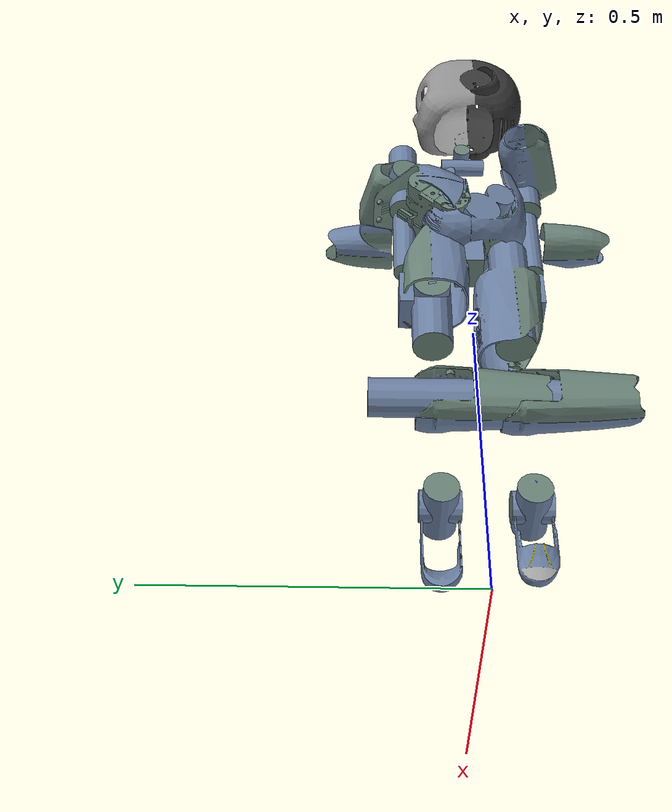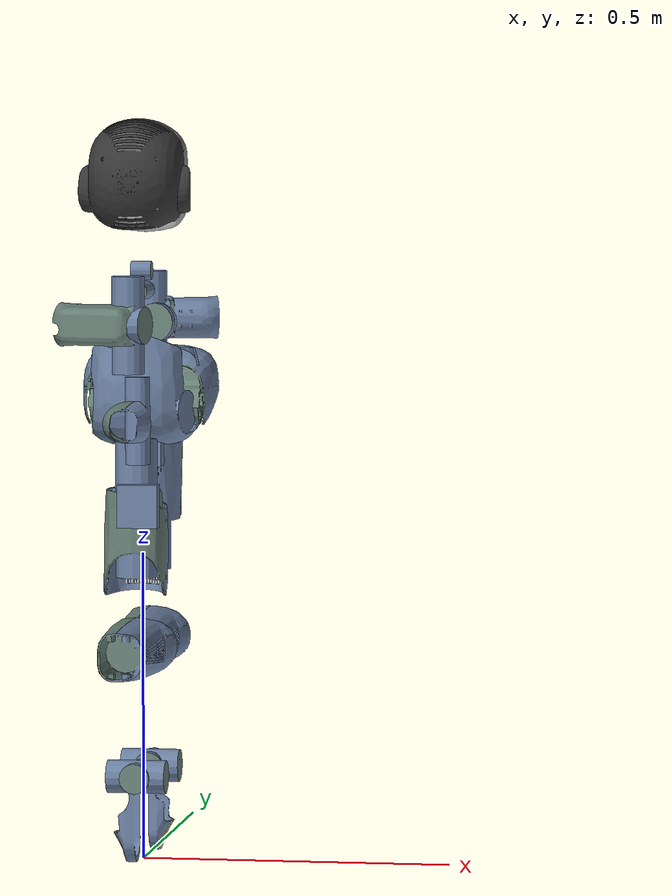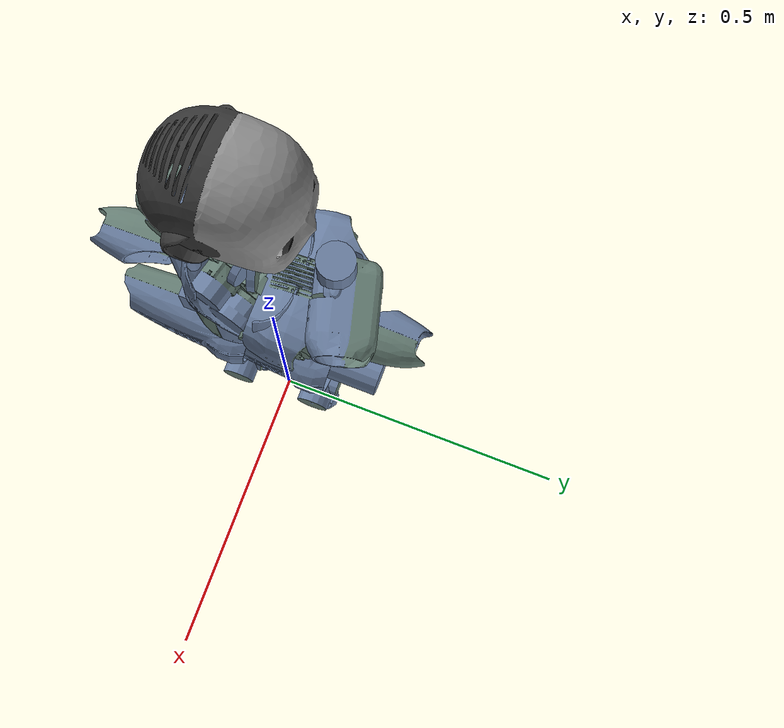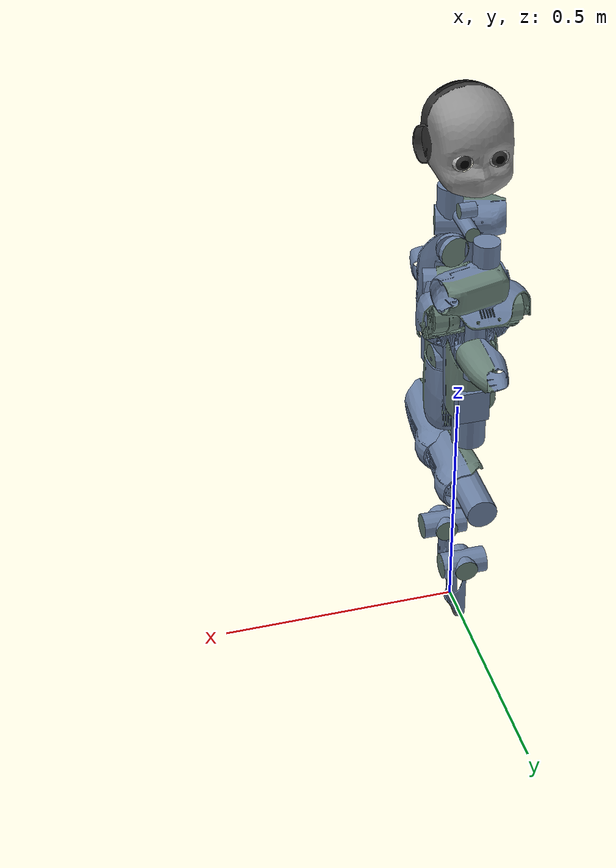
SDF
<sdf version='1.5'>
  <model name='test_icub'>
    <link name='root_link'>
      <pose>0 0 0 0 -0 0</pose>
      <inertial>
        <pose>0 0 0 0 -0 0</pose>
        <mass>4.72</mass>
        <inertia>
          <ixx>0.01</ixx>
          <ixy>0</ixy>
          <ixz>0</ixz>
          <iyy>0.01</iyy>
          <iyz>0</iyz>
          <izz>0.01</izz>
        </inertia>
      </inertial>
      <collision name='root_link_collision'>
        <pose>0 0 0 0 -0 0</pose>
        <geometry>
          <mesh>
            <scale>1 1 1</scale>
            <uri>model://icub/meshes/collision/icub_simple_collision_root_link.dae</uri>
          </mesh>
        </geometry>
      </collision>
      <visual name='root_link_visual'>
        <pose>0 0 0 0 -0 0</pose>
        <geometry>
          <mesh>
            <scale>1 1 1</scale>
            <uri>model://icub/meshes/visual/icub_root_link.dae</uri>
          </mesh>
        </geometry>
      </visual>
    </link>
    <link name='l_hip_1'>
      <pose>0 -0.0681 -0.1199 2.65359e-06 1.57079 3.14159</pose>
      <inertial>
        <pose>8.0431e-05 -0.00691643 -0.0023047 0 -0 0</pose>
        <mass>0.695</mass>
        <inertia>
          <ixx>0.01</ixx>
          <ixy>-2.2209e-05</ixy>
          <ixz>1.39712e-05</ixz>
          <iyy>0.01</iyy>
          <iyz>4.77629e-05</iyz>
          <izz>0.01</izz>
        </inertia>
      </inertial>
      <collision name='l_hip_1_collision'>
        <pose>0 0 0 -0.785403 1.57079 -2.35619</pose>
        <geometry>
          <mesh>
            <scale>1 1 1</scale>
            <uri>model://icub/meshes/collision/icub_simple_collision_l_hip_1.dae</uri>
          </mesh>
        </geometry>
      </collision>
      <visual name='l_hip_1_visual'>
        <pose>0 0 0 -0.785403 1.57079 -2.35619</pose>
        <geometry>
          <mesh>
            <scale>1 1 1</scale>
            <uri>model://icub/meshes/visual/icub_l_hip_1.dae</uri>
          </mesh>
        </geometry>
      </visual>
    </link>
    <joint name='l_hip_pitch' type='revolute'>
      <child>l_hip_1</child>
      <parent>root_link</parent>
      <axis>
        <xyz>2.65359e-06 1 -9.74718e-12</xyz>
        <limit>
          <lower>-0.767945</lower>
          <upper>2.30383</upper>
          <effort>84</effort>
          <velocity>100</velocity>
        </limit>
        <dynamics>
          <damping>0.1</damping>
          <friction>0</friction>
          <spring_reference>0</spring_reference>
          <spring_stiffness>0</spring_stiffness>
        </dynamics>
        <use_parent_model_frame>1</use_parent_model_frame>
      </axis>
    </joint>
    <link name='l_hip_2'>
      <pose>0 -0.0681 -0.1199 3.14159 -7.34641e-06 3.14159</pose>
      <inertial>
        <pose>0.0010964 -3.13229e-05 0.0598624 0 -0 0</pose>
        <mass>0.982</mass>
        <inertia>
          <ixx>0.0253646</ixx>
          <ixy>1.2116e-06</ixy>
          <ixz>0.000491081</ixz>
          <iyy>0.0272714</iyy>
          <iyz>1.15713e-05</iyz>
          <izz>0.01</izz>
        </inertia>
      </inertial>
      <collision name='l_hip_2_collision'>
        <pose>0 0 0 0.785363 -1.57079 2.35623</pose>
        <geometry>
          <mesh>
            <scale>1 1 1</scale>
            <uri>model://icub/meshes/collision/icub_simple_collision_l_hip_2.dae</uri>
          </mesh>
        </geometry>
      </collision>
      <visual name='l_hip_2_visual'>
        <pose>0 0 0 0.785363 -1.57079 2.35623</pose>
        <geometry>
          <mesh>
            <scale>1 1 1</scale>
            <uri>model://icub/meshes/visual/icub_l_hip_2.dae</uri>
          </mesh>
        </geometry>
      </visual>
    </link>
    <joint name='l_hip_roll' type='revolute'>
      <child>l_hip_2</child>
      <parent>l_hip_1</parent>
      <axis>
        <xyz>-1 2.65359e-06 7.34641e-06</xyz>
        <limit>
          <lower>-2.07694</lower>
          <upper>0.296706</upper>
          <effort>84</effort>
          <velocity>100</velocity>
        </limit>
        <dynamics>
          <damping>0.1</damping>
          <friction>0</friction>
          <spring_reference>0</spring_reference>
          <spring_stiffness>0</spring_stiffness>
        </dynamics>
        <use_parent_model_frame>1</use_parent_model_frame>
      </axis>
    </joint>
    <link name='l_hip_3'>
      <pose>-4.88536e-07 -0.0680998 -0.1864 3.14159 -7.34641e-06 3.14159</pose>
      <inertial>
        <pose>0 0 0 0 -0 0</pose>
        <mass>0.1</mass>
        <inertia>
          <ixx>0.01</ixx>
          <ixy>0</ixy>
          <ixz>0</ixz>
          <iyy>0.01</iyy>
          <iyz>0</iyz>
          <izz>0.01</izz>
        </inertia>
      </inertial>
    </link>
    <joint name='l_leg_ft_sensor' type='revolute'>
      <child>l_hip_3</child>
      <parent>l_hip_2</parent>
      <axis>
        <xyz>0 0 0</xyz>
        <limit>
          <lower>0</lower>
          <upper>0</upper>
          <effort>0</effort>
          <velocity>0</velocity>
        </limit>
        <dynamics>
          <spring_reference>0</spring_reference>
          <spring_stiffness>0</spring_stiffness>
        </dynamics>
        <use_parent_model_frame>1</use_parent_model_frame>
      </axis>
      <sensor name='left_leg_ft' type='force_torque'>
        <always_on>1</always_on>
        <update_rate>100</update_rate>
        <pose>0 0 0 0 0 0</pose>
        <plugin name='left_leg_ft_plugin' filename='libgazebo_yarp_forcetorque.so'>
          <yarpConfigurationFile>model://iCubDarmstad01/conf/FT/gazebo_icub_left_leg_ft.ini</yarpConfigurationFile>
        </plugin>
      </sensor>
    </joint>
    <link name='l_upper_leg'>
      <pose>0 -0.0681 -0.1199 1.57079 -7.34641e-06 3.14159</pose>
      <inertial>
        <pose>0.0021968 -0.174502 0.0013437 0 -0 0</pose>
        <mass>1.522</mass>
        <inertia>
          <ixx>0.0454917</ixx>
          <ixy>-0.000940971</ixy>
          <ixz>5.37405e-05</ixz>
          <iyy>0.01004</iyy>
          <iyz>0.001203</iyz>
          <izz>0.0458255</izz>
        </inertia>
      </inertial>
      <collision name='l_upper_leg_collision'>
        <pose>0 0 0 -2.67797 1.57079 -1.10716</pose>
        <geometry>
          <mesh>
            <scale>1 1 1</scale>
            <uri>model://icub/meshes/collision/icub_simple_collision_l_thigh.dae</uri>
          </mesh>
        </geometry>
      </collision>
      <visual name='l_upper_leg_visual'>
        <pose>0 0 0 -2.67797 1.57079 -1.10716</pose>
        <geometry>
          <mesh>
            <scale>1 1 1</scale>
            <uri>model://icub/meshes/visual/icub_l_thigh.dae</uri>
          </mesh>
        </geometry>
      </visual>
    </link>
    <joint name='l_hip_yaw' type='revolute'>
      <child>l_upper_leg</child>
      <parent>l_hip_3</parent>
      <axis>
        <xyz>7.34639e-06 -6.3268e-06 1</xyz>
        <limit>
          <lower>-1.37881</lower>
          <upper>1.37881</upper>
          <effort>40</effort>
          <velocity>100</velocity>
        </limit>
        <dynamics>
          <damping>0.1</damping>
          <friction>0</friction>
          <spring_reference>0</spring_reference>
          <spring_stiffness>0</spring_stiffness>
        </dynamics>
        <use_parent_model_frame>1</use_parent_model_frame>
      </axis>
    </joint>
    <link name='l_lower_leg'>
      <pose>0.000915777 -0.0680985 -0.354445 2.09198 -1.57078 -0.521189</pose>
      <inertial>
        <pose>-0.0761044 -4.50091e-05 0.0062408 0 -0 0</pose>
        <mass>2.032</mass>
        <inertia>
          <ixx>0.0154559</ixx>
          <ixy>-0.0013903</ixy>
          <ixz>-0.0039454</ixz>
          <iyy>0.070277</iyy>
          <iyz>0.00071995</iyz>
          <izz>0.0659645</izz>
        </inertia>
      </inertial>
      <collision name='l_lower_leg_collision'>
        <pose>0.010945 0.0009175 2.2823e-12 -3.14159 -2.33487e-16 1.5708</pose>
        <geometry>
          <mesh>
            <scale>1 1 1</scale>
            <uri>model://icub/meshes/collision/icub_simple_collision_l_shank.dae</uri>
          </mesh>
        </geometry>
      </collision>
      <visual name='l_lower_leg_visual'>
        <pose>0.010945 0.0009175 2.2823e-12 -3.14159 -2.33487e-16 1.5708</pose>
        <geometry>
          <mesh>
            <scale>1 1 1</scale>
            <uri>model://icub/meshes/visual/icub_l_shank.dae</uri>
          </mesh>
        </geometry>
      </visual>
    </link>
    <joint name='l_knee' type='revolute'>
      <child>l_lower_leg</child>
      <parent>l_upper_leg</parent>
      <axis>
        <xyz>5.30723e-06 1 6.32676e-06</xyz>
        <limit>
          <lower>-2.18166</lower>
          <upper>0.401426</upper>
          <effort>30</effort>
          <velocity>100</velocity>
        </limit>
        <dynamics>
          <damping>0.1</damping>
          <friction>0</friction>
          <spring_reference>0</spring_reference>
          <spring_stiffness>0</spring_stiffness>
        </dynamics>
        <use_parent_model_frame>1</use_parent_model_frame>
      </axis>
    </joint>
    <link name='l_ankle_1'>
      <pose>0.000913568 -0.0680972 -0.554945 0.52118 -1.57078 -0.521189</pose>
      <inertial>
        <pose>2.65892e-05 -0.00082253 0.0102574 0 -0 0</pose>
        <mass>0.643</mass>
        <inertia>
          <ixx>4.76593</ixx>
          <ixy>9.7426e-06</ixy>
          <ixz>2.68085e-05</ixz>
          <iyy>0.01</iyy>
          <iyz>-0.000353796</iyz>
          <izz>0.01</izz>
        </inertia>
      </inertial>
      <collision name='l_ankle_1_collision'>
        <pose>-0.001555 -5.54343e-12 0.0009175 1.5708 1.53106e-11 1.53105e-11</pose>
        <geometry>
          <mesh>
            <scale>1 1 1</scale>
            <uri>model://icub/meshes/collision/icub_simple_collision_l_ankle_1.dae</uri>
          </mesh>
        </geometry>
      </collision>
      <visual name='l_ankle_1_visual'>
        <pose>-0.001555 -5.54343e-12 0.0009175 1.5708 1.53106e-11 1.53105e-11</pose>
        <geometry>
          <mesh>
            <scale>1 1 1</scale>
            <uri>model://icub/meshes/visual/icub_l_ankle_1.dae</uri>
          </mesh>
        </geometry>
      </visual>
    </link>
    <joint name='l_ankle_pitch' type='revolute'>
      <child>l_ankle_1</child>
      <parent>l_lower_leg</parent>
      <axis>
        <xyz>-8.98043e-06 -1 -6.32672e-06</xyz>
        <limit>
          <lower>-0.733038</lower>
          <upper>0.366519</upper>
          <effort>24</effort>
          <velocity>100</velocity>
        </limit>
        <dynamics>
          <damping>0.1</damping>
          <friction>0</friction>
          <spring_reference>0</spring_reference>
          <spring_stiffness>0</spring_stiffness>
        </dynamics>
        <use_parent_model_frame>1</use_parent_model_frame>
      </axis>
    </joint>
    <link name='l_ankle_2'>
      <pose>0.000913568 -0.0680972 -0.554945 3.14159 -7.34645e-06 3.14158</pose>
      <inertial>
        <pose>-0.0035 0 0.0645 0 -0 0</pose>
        <mass>0.2675</mass>
        <inertia>
          <ixx>0.01</ixx>
          <ixy>0</ixy>
          <ixz>0</ixz>
          <iyy>0.01</iyy>
          <iyz>0</iyz>
          <izz>0.01</izz>
        </inertia>
      </inertial>
    </link>
    <joint name='l_ankle_roll' type='revolute'>
      <child>l_ankle_2</child>
      <parent>l_ankle_1</parent>
      <axis>
        <xyz>-1 8.98038e-06 7.34645e-06</xyz>
        <limit>
          <lower>-0.418879</lower>
          <upper>0.418879</upper>
          <effort>11</effort>
          <velocity>100</velocity>
        </limit>
        <dynamics>
          <damping>0.1</damping>
          <friction>0</friction>
          <spring_reference>0</spring_reference>
          <spring_stiffness>0</spring_stiffness>
        </dynamics>
        <use_parent_model_frame>1</use_parent_model_frame>
      </axis>
    </joint>
    <link name='l_foot'>
      <pose>0.00441309 -0.0680969 -0.619445 3.14159 -7.34645e-06 3.14158</pose>
      <inertial>
        <pose>0.024069 -0.000613931 -0.0284154 0 -0 0</pose>
        <mass>0.5935</mass>
        <inertia>
          <ixx>0.01</ixx>
          <ixy>-4.51893e-06</ixy>
          <ixz>0.000567785</ixz>
          <iyy>0.01</iyy>
          <iyz>-6.62361e-07</iyz>
          <izz>0.01</izz>
        </inertia>
      </inertial>
      <collision name='l_foot_collision'>
        <pose>-0.03 0 0.035 0 -0 0</pose>
        <geometry>
          <box>
            <size>0.03 0.07 0.15</size>
          </box>
        </geometry>
        <max_contacts>4</max_contacts>
        <surface>
          <contact>
            <ode>
              <soft_erp>0.2</soft_erp>
              <soft_cfm>0</soft_cfm>
              <kp>100000</kp>
              <kd>1</kd>
              <max_vel>100</max_vel>
              <min_depth>0.001</min_depth>
            </ode>
          </contact>
          <friction>
            <ode>
              <mu>1</mu>
              <mu2>1</mu2>
              <fdir1>0 0 0</fdir1>
              <slip1>0</slip1>
              <slip2>0</slip2>
            </ode>
          </friction>
          <bounce>
            <restitution_coefficient>0</restitution_coefficient>
            <threshold>100000</threshold>
          </bounce>
        </surface>
      </collision>
      <visual name='l_foot_visual'>
        <pose>0.0044175 -5.54341e-12 -0.062945 -0.785403 1.57079 -0.785403</pose>
        <geometry>
          <mesh>
            <scale>1 1 1</scale>
            <uri>model://icub/meshes/visual/icub_l_foot.dae</uri>
          </mesh>
        </geometry>
      </visual>
    </link>
    <joint name='l_foot_ft_sensor' type='revolute'>
      <child>l_foot</child>
      <parent>l_ankle_2</parent>
      <axis>
        <xyz>0 0 0</xyz>
        <limit>
          <lower>0</lower>
          <upper>0</upper>
          <effort>0</effort>
          <velocity>0</velocity>
        </limit>
        <dynamics>
          <spring_reference>0</spring_reference>
          <spring_stiffness>0</spring_stiffness>
        </dynamics>
        <use_parent_model_frame>1</use_parent_model_frame>
      </axis>
      <sensor name='left_foot_ft' type='force_torque'>
        <always_on>1</always_on>
        <update_rate>100</update_rate>
        <pose>0 0 0 0 0 0</pose>
        <plugin name='left_foot_ft_plugin' filename='libgazebo_yarp_forcetorque.so'>
          <yarpConfigurationFile>model://iCubDarmstad01/conf/FT/gazebo_icub_left_foot_ft.ini</yarpConfigurationFile>
        </plugin>
      </sensor>
    </joint>
    <link name='r_hip_1'>
      <pose>0 0.0681 -0.1199 3.14159 1.57079 -3.14159</pose>
      <inertial>
        <pose>8.0431e-05 -0.00691643 0.0023047 0 -0 0</pose>
        <mass>0.695</mass>
        <inertia>
          <ixx>0.01</ixx>
          <ixy>-2.2209e-05</ixy>
          <ixz>-1.39712e-05</ixz>
          <iyy>0.01</iyy>
          <iyz>-4.77629e-05</iyz>
          <izz>0.01</izz>
        </inertia>
      </inertial>
      <collision name='r_hip_1_collision'>
        <pose>0 0 0 1.76819 -1.57079 2.76109</pose>
        <geometry>
          <mesh>
            <scale>1 1 1</scale>
            <uri>model://icub/meshes/collision/icub_simple_collision_r_hip_1.dae</uri>
          </mesh>
        </geometry>
      </collision>
      <visual name='r_hip_1_visual'>
        <pose>0 0 0 1.76819 -1.57079 2.76109</pose>
        <geometry>
          <mesh>
            <scale>1 1 1</scale>
            <uri>model://icub/meshes/visual/icub_r_hip_1.dae</uri>
          </mesh>
        </geometry>
      </visual>
    </link>
    <joint name='r_hip_pitch' type='revolute'>
      <child>r_hip_1</child>
      <parent>root_link</parent>
      <axis>
        <xyz>5.7211e-18 1 -1.22967e-22</xyz>
        <limit>
          <lower>-0.767945</lower>
          <upper>2.30383</upper>
          <effort>84</effort>
          <velocity>100</velocity>
        </limit>
        <dynamics>
          <damping>0.1</damping>
          <friction>0</friction>
          <spring_reference>0</spring_reference>
          <spring_stiffness>0</spring_stiffness>
        </dynamics>
        <use_parent_model_frame>1</use_parent_model_frame>
      </axis>
    </joint>
    <link name='r_hip_2'>
      <pose>0 0.0681 -0.1199 -3.14159 -7.34641e-06 -3.14159</pose>
      <inertial>
        <pose>0.0010964 -3.13229e-05 0.0598624 0 -0 0</pose>
        <mass>0.982</mass>
        <inertia>
          <ixx>0.0253646</ixx>
          <ixy>1.2116e-06</ixy>
          <ixz>0.000491081</ixz>
          <iyy>0.0272714</iyy>
          <iyz>1.15713e-05</iyz>
          <izz>0.01</izz>
        </inertia>
      </inertial>
      <collision name='r_hip_2_collision'>
        <pose>0 0 0 -2.35627 -1.57079 2.35627</pose>
        <geometry>
          <mesh>
            <scale>1 1 1</scale>
            <uri>model://icub/meshes/collision/icub_simple_collision_r_hip_2.dae</uri>
          </mesh>
        </geometry>
      </collision>
      <visual name='r_hip_2_visual'>
        <pose>0 0 0 -2.35627 -1.57079 2.35627</pose>
        <geometry>
          <mesh>
            <scale>1 1 1</scale>
            <uri>model://icub/meshes/visual/icub_r_hip_2.dae</uri>
          </mesh>
        </geometry>
      </visual>
    </link>
    <joint name='r_hip_roll' type='revolute'>
      <child>r_hip_2</child>
      <parent>r_hip_1</parent>
      <axis>
        <xyz>1 5.55111e-17 -7.34641e-06</xyz>
        <limit>
          <lower>-2.07694</lower>
          <upper>0.296706</upper>
          <effort>84</effort>
          <velocity>100</velocity>
        </limit>
        <dynamics>
          <damping>0.1</damping>
          <friction>0</friction>
          <spring_reference>0</spring_reference>
          <spring_stiffness>0</spring_stiffness>
        </dynamics>
        <use_parent_model_frame>1</use_parent_model_frame>
      </axis>
    </joint>
    <link name='r_hip_3'>
      <pose>-4.88536e-07 0.0681 -0.1864 -3.14159 -7.34641e-06 -3.14159</pose>
      <inertial>
        <pose>0 0 0 0 -0 0</pose>
        <mass>0.1</mass>
        <inertia>
          <ixx>0.01</ixx>
          <ixy>0</ixy>
          <ixz>0</ixz>
          <iyy>0.01</iyy>
          <iyz>0</iyz>
          <izz>0.01</izz>
        </inertia>
      </inertial>
    </link>
    <joint name='r_leg_ft_sensor' type='revolute'>
      <child>r_hip_3</child>
      <parent>r_hip_2</parent>
      <axis>
        <xyz>0 0 -0</xyz>
        <limit>
          <lower>0</lower>
          <upper>0</upper>
          <effort>0</effort>
          <velocity>0</velocity>
        </limit>
        <dynamics>
          <spring_reference>0</spring_reference>
          <spring_stiffness>0</spring_stiffness>
        </dynamics>
        <use_parent_model_frame>1</use_parent_model_frame>
      </axis>
      <sensor name='right_leg_ft' type='force_torque'>
        <always_on>1</always_on>
        <update_rate>100</update_rate>
        <pose>0 0 0 0 0 0</pose>
        <plugin name='right_leg_ft_plugin' filename='libgazebo_yarp_forcetorque.so'>
          <yarpConfigurationFile>model://iCubDarmstad01/conf/FT/gazebo_icub_right_leg_ft.ini</yarpConfigurationFile>
        </plugin>
      </sensor>
    </joint>
    <link name='r_upper_leg'>
      <pose>0 0.0681 -0.1199 1.57079 -7.34641e-06 3.14159</pose>
      <inertial>
        <pose>0.0021968 -0.174502 -0.0013437 0 -0 0</pose>
        <mass>1.522</mass>
        <inertia>
          <ixx>0.0454917</ixx>
          <ixy>-0.000940971</ixy>
          <ixz>-5.37405e-05</ixz>
          <iyy>0.01004</iyy>
          <iyz>-0.001203</iyz>
          <izz>0.0458255</izz>
        </inertia>
      </inertial>
      <collision name='r_upper_leg_collision'>
        <pose>0 0 0 1.57087 -1.57079 -7.26536e-05</pose>
        <geometry>
          <mesh>
            <scale>1 1 1</scale>
            <uri>model://icub/meshes/collision/icub_simple_collision_r_thigh.dae</uri>
          </mesh>
        </geometry>
      </collision>
      <visual name='r_upper_leg_visual'>
        <pose>0 0 0 1.57087 -1.57079 -7.26536e-05</pose>
        <geometry>
          <mesh>
            <scale>1 1 1</scale>
            <uri>model://icub/meshes/visual/icub_r_thigh.dae</uri>
          </mesh>
        </geometry>
      </visual>
    </link>
    <joint name='r_hip_yaw' type='revolute'>
      <child>r_upper_leg</child>
      <parent>r_hip_3</parent>
      <axis>
        <xyz>-7.34641e-06 3.67321e-06 -1</xyz>
        <limit>
          <lower>-1.37881</lower>
          <upper>1.37881</upper>
          <effort>40</effort>
          <velocity>100</velocity>
        </limit>
        <dynamics>
          <damping>0.1</damping>
          <friction>0</friction>
          <spring_reference>0</spring_reference>
          <spring_stiffness>0</spring_stiffness>
        </dynamics>
        <use_parent_model_frame>1</use_parent_model_frame>
      </axis>
    </joint>
    <link name='r_lower_leg'>
      <pose>0.000915777 0.0681009 -0.354445 1.89254 -1.57078 -0.321751</pose>
      <inertial>
        <pose>-0.0761044 -4.50091e-05 -0.0062408 0 -0 0</pose>
        <mass>2.032</mass>
        <inertia>
          <ixx>0.0154559</ixx>
          <ixy>-0.0013903</ixy>
          <ixz>0.0039454</ixz>
          <iyy>0.070277</iyy>
          <iyz>-0.00071995</iyz>
          <izz>0.0659645</izz>
        </inertia>
      </inertial>
      <collision name='r_lower_leg_collision'>
        <pose>0.010945 0.0009175 -8.32667e-17 3.14159 -1.14426e-17 1.5708</pose>
        <geometry>
          <mesh>
            <scale>1 1 1</scale>
            <uri>model://icub/meshes/collision/icub_simple_collision_r_shank.dae</uri>
          </mesh>
        </geometry>
      </collision>
      <visual name='r_lower_leg_visual'>
        <pose>0.010945 0.0009175 -8.32667e-17 3.14159 -1.14426e-17 1.5708</pose>
        <geometry>
          <mesh>
            <scale>1 1 1</scale>
            <uri>model://icub/meshes/visual/icub_r_shank.dae</uri>
          </mesh>
        </geometry>
      </visual>
    </link>
    <joint name='r_knee' type='revolute'>
      <child>r_lower_leg</child>
      <parent>r_upper_leg</parent>
      <axis>
        <xyz>2.65362e-06 1 3.67318e-06</xyz>
        <limit>
          <lower>-2.18166</lower>
          <upper>0.401426</upper>
          <effort>30</effort>
          <velocity>100</velocity>
        </limit>
        <dynamics>
          <damping>0.1</damping>
          <friction>0</friction>
          <spring_reference>0</spring_reference>
          <spring_stiffness>0</spring_stiffness>
        </dynamics>
        <use_parent_model_frame>1</use_parent_model_frame>
      </axis>
    </joint>
    <link name='r_ankle_1'>
      <pose>0.000913568 0.0681016 -0.554945 -2.81984 -1.57078 -0.321751</pose>
      <inertial>
        <pose>-2.65892e-05 -0.00082253 -0.0102574 0 -0 0</pose>
        <mass>0.643</mass>
        <inertia>
          <ixx>4.76593</ixx>
          <ixy>9.7426e-06</ixy>
          <ixz>-2.68085e-05</ixz>
          <iyy>0.01</iyy>
          <iyz>0.000353796</iyz>
          <izz>0.01</izz>
        </inertia>
      </inertial>
      <collision name='r_ankle_1_collision'>
        <pose>-0.001555 -1.08717e-12 -0.0009175 -1.5708 -1.53106e-11 5.10376e-12</pose>
        <geometry>
          <mesh>
            <scale>1 1 1</scale>
            <uri>model://icub/meshes/collision/icub_simple_collision_r_ankle_1.dae</uri>
          </mesh>
        </geometry>
      </collision>
      <visual name='r_ankle_1_visual'>
        <pose>-0.001555 -1.08717e-12 -0.0009175 -1.5708 -1.53106e-11 5.10376e-12</pose>
        <geometry>
          <mesh>
            <scale>1 1 1</scale>
            <uri>model://icub/meshes/visual/icub_r_ankle_1.dae</uri>
          </mesh>
        </geometry>
      </visual>
    </link>
    <joint name='r_ankle_pitch' type='revolute'>
      <child>r_ankle_1</child>
      <parent>r_lower_leg</parent>
      <axis>
        <xyz>1.01959e-06 -1 -3.67322e-06</xyz>
        <limit>
          <lower>-0.733038</lower>
          <upper>0.366519</upper>
          <effort>24</effort>
          <velocity>100</velocity>
        </limit>
        <dynamics>
          <damping>0.1</damping>
          <friction>0</friction>
          <spring_reference>0</spring_reference>
          <spring_stiffness>0</spring_stiffness>
        </dynamics>
        <use_parent_model_frame>1</use_parent_model_frame>
      </axis>
    </joint>
    <link name='r_ankle_2'>
      <pose>0.000913568 0.0681016 -0.554945 3.14159 -1.4236e-05 -3.14159</pose>
      <inertial>
        <pose>-0.0035 4.28626e-19 0.0645 0 -0 0</pose>
        <mass>0.2675</mass>
        <inertia>
          <ixx>0.01</ixx>
          <ixy>4.70198e-38</ixy>
          <ixz>0</ixz>
          <iyy>0.01</iyy>
          <iyz>0</iyz>
          <izz>0.01</izz>
        </inertia>
      </inertial>
    </link>
    <joint name='r_ankle_roll' type='revolute'>
      <child>r_ankle_2</child>
      <parent>r_ankle_1</parent>
      <axis>
        <xyz>1 2.79362e-06 -1.4236e-05</xyz>
        <limit>
          <lower>-0.418879</lower>
          <upper>0.418879</upper>
          <effort>11</effort>
          <velocity>100</velocity>
        </limit>
        <dynamics>
          <damping>0.1</damping>
          <friction>0</friction>
          <spring_reference>0</spring_reference>
          <spring_stiffness>0</spring_stiffness>
        </dynamics>
        <use_parent_model_frame>1</use_parent_model_frame>
      </axis>
    </joint>
    <link name='r_foot'>
      <pose>0.00441265 0.0681021 -0.619445 3.14159 -1.4236e-05 -3.14159</pose>
      <inertial>
        <pose>0.024069 0.000613931 -0.0284154 0 -0 0</pose>
        <mass>0.5935</mass>
        <inertia>
          <ixx>0.01</ixx>
          <ixy>4.51893e-06</ixy>
          <ixz>0.000567784</ixz>
          <iyy>0.01</iyy>
          <iyz>6.62535e-07</iyz>
          <izz>0.01</izz>
        </inertia>
      </inertial>
      <collision name='r_foot_collision'>
        <pose>-0.03 0 0.035 0 -0 0</pose>
        <geometry>
          <box>
            <size>0.03 0.07 0.15</size>
          </box>
        </geometry>
        <max_contacts>4</max_contacts>
        <surface>
          <contact>
            <ode>
              <soft_erp>0.2</soft_erp>
              <soft_cfm>0</soft_cfm>
              <kp>100000</kp>
              <kd>1</kd>
              <max_vel>100</max_vel>
              <min_depth>0.001</min_depth>
            </ode>
          </contact>
          <friction>
            <ode>
              <mu>1</mu>
              <mu2>1</mu2>
              <fdir1>0 0 0</fdir1>
              <slip1>0</slip1>
              <slip2>0</slip2>
            </ode>
          </friction>
          <bounce>
            <restitution_coefficient>0</restitution_coefficient>
            <threshold>100000</threshold>
          </bounce>
        </surface>
      </collision>
      <visual name='r_foot_visual'>
        <pose>0.0044175 1.08716e-12 -0.062945 -2.81983 1.57079 0.321763</pose>
        <geometry>
          <mesh>
            <scale>1 1 1</scale>
            <uri>model://icub/meshes/visual/icub_r_foot.dae</uri>
          </mesh>
        </geometry>
      </visual>
    </link>
    <joint name='r_foot_ft_sensor' type='revolute'>
      <child>r_foot</child>
      <parent>r_ankle_2</parent>
      <axis>
        <xyz>0 0 0</xyz>
        <limit>
          <lower>0</lower>
          <upper>0</upper>
          <effort>0</effort>
          <velocity>0</velocity>
        </limit>
        <dynamics>
          <spring_reference>0</spring_reference>
          <spring_stiffness>0</spring_stiffness>
        </dynamics>
        <use_parent_model_frame>1</use_parent_model_frame>
      </axis>
      <sensor name='right_foot_ft' type='force_torque'>
        <always_on>1</always_on>
        <update_rate>100</update_rate>
        <pose>0 0 0 0 0 0</pose>
        <plugin name='right_foot_ft_plugin' filename='libgazebo_yarp_forcetorque.so'>
          <yarpConfigurationFile>model://iCubDarmstad01/conf/FT/gazebo_icub_right_foot_ft.ini</yarpConfigurationFile>
        </plugin>
      </sensor>
    </joint>
    <link name='torso_1'>
      <pose>0 0 0 3.14159 -1.57079 -2.65359e-06</pose>
      <inertial>
        <pose>0 0 0 0 -0 0</pose>
        <mass>0.1</mass>
        <inertia>
          <ixx>0.01</ixx>
          <ixy>-4.263e-05</ixy>
          <ixz>-3.889e-08</ixz>
          <iyy>0.01</iyy>
          <iyz>0</iyz>
          <izz>0.01</izz>
        </inertia>
      </inertial>
      <collision name='torso_1_collision'>
        <pose>0 0 0 -1.5708 5.10314e-12 1.11022e-16</pose>
        <geometry>
          <mesh>
            <scale>1 1 1</scale>
            <uri>model://icub/meshes/collision/icub_simple_collision_lap_belt_1.dae</uri>
          </mesh>
        </geometry>
      </collision>
      <visual name='torso_1_visual'>
        <pose>0 0 0 -1.5708 5.10314e-12 1.11022e-16</pose>
        <geometry>
          <mesh>
            <scale>1 1 1</scale>
            <uri>model://icub/meshes/visual/icub_lap_belt_1.dae</uri>
          </mesh>
        </geometry>
      </visual>
    </link>
    <joint name='torso_pitch' type='revolute'>
      <child>torso_1</child>
      <parent>root_link</parent>
      <axis>
        <xyz>-2.65359e-06 -1 -1.05879e-22</xyz>
        <limit>
          <lower>-0.383972</lower>
          <upper>1.46608</upper>
          <effort>36</effort>
          <velocity>100</velocity>
        </limit>
        <dynamics>
          <damping>0.1</damping>
          <friction>0</friction>
          <spring_reference>0</spring_reference>
          <spring_stiffness>0</spring_stiffness>
        </dynamics>
        <use_parent_model_frame>1</use_parent_model_frame>
      </axis>
    </joint>
    <link name='torso_2'>
      <pose>1.17543e-07 -3.1191e-13 0.032 -3.14159 3.67321e-06 1.57079</pose>
      <inertial>
        <pose>0 0 0 0 -0 0</pose>
        <mass>0.1</mass>
        <inertia>
          <ixx>0.01</ixx>
          <ixy>-1.923e-06</ixy>
          <ixz>5.095e-05</ixz>
          <iyy>0.01</iyy>
          <iyz>-3.849e-07</iyz>
          <izz>0.01</izz>
        </inertia>
      </inertial>
    </link>
    <joint name='torso_roll' type='revolute'>
      <child>torso_2</child>
      <parent>torso_1</parent>
      <axis>
        <xyz>1 -2.6536e-06 -7.34641e-06</xyz>
        <limit>
          <lower>-0.680678</lower>
          <upper>0.680678</upper>
          <effort>80</effort>
          <velocity>100</velocity>
        </limit>
        <dynamics>
          <damping>0.1</damping>
          <friction>0</friction>
          <spring_reference>0</spring_reference>
          <spring_stiffness>0</spring_stiffness>
        </dynamics>
        <use_parent_model_frame>1</use_parent_model_frame>
      </axis>
    </joint>
    <link name='chest'>
      <pose>-0.00549988 1.45945e-08 0.032 1.5708 -7.34642e-06 -3.14159</pose>
      <inertial>
        <pose>0.00222898 0.075 -1.18362e-17 0 -0 0</pose>
        <mass>4.81</mass>
        <inertia>
          <ixx>0.07472</ixx>
          <ixy>-3.6e-06</ixy>
          <ixz>-4.705e-05</ixz>
          <iyy>0.08145</iyy>
          <iyz>0.004567</iyz>
          <izz>0.01306</izz>
        </inertia>
      </inertial>
      <collision name='chest_collision'>
        <pose>-0.0055 -6.93889e-18 -3.55271e-18 -1.10717 -1.57079 2.67798</pose>
        <geometry>
          <mesh>
            <scale>1 1 1</scale>
            <uri>model://icub/meshes/collision/icub_simple_collision_chest.dae</uri>
          </mesh>
        </geometry>
      </collision>
      <visual name='chest_visual'>
        <pose>-0.0055 -6.93889e-18 -3.55271e-18 -1.10717 -1.57079 2.67798</pose>
        <geometry>
          <mesh>
            <scale>1 1 1</scale>
            <uri>model://icub/meshes/visual/icub_chest.dae</uri>
          </mesh>
        </geometry>
      </visual>
    </link>
    <joint name='torso_yaw' type='revolute'>
      <child>chest</child>
      <parent>torso_2</parent>
      <axis>
        <xyz>-7.34642e-06 1.94942e-11 -1</xyz>
        <limit>
          <lower>-1.02974</lower>
          <upper>1.02974</upper>
          <effort>80</effort>
          <velocity>100</velocity>
        </limit>
        <dynamics>
          <damping>0.1</damping>
          <friction>0</friction>
          <spring_reference>0</spring_reference>
          <spring_stiffness>0</spring_stiffness>
        </dynamics>
        <use_parent_model_frame>1</use_parent_model_frame>
      </axis>
    </joint>
    <link name='l_shoulder_1'>
      <pose>-0.0107487 -0.11026 0.1753 -0.261794 -1.57079 -1.42917e-06</pose>
      <inertial>
        <pose>-5e-06 0.0187 -0.00119 0 -0 0</pose>
        <mass>0.189</mass>
        <inertia>
          <ixx>0.01</ixx>
          <ixy>9e-09</ixy>
          <ixz>0</ixz>
          <iyy>0.01</iyy>
          <iyz>-1.7e-08</iyz>
          <izz>0.01</izz>
        </inertia>
      </inertial>
      <collision name='l_shoulder_1_collision'>
        <pose>3.08642e-14 0.109285 -0.00521101 -0.301063 1.57079 -1.87186</pose>
        <geometry>
          <mesh>
            <scale>1 1 1</scale>
            <uri>model://icub/meshes/collision/icub_simple_collision_l_shoulder_1.dae</uri>
          </mesh>
        </geometry>
      </collision>
      <visual name='l_shoulder_1_visual'>
        <pose>3.08642e-14 0.109285 -0.00521101 -0.301063 1.57079 -1.87186</pose>
        <geometry>
          <mesh>
            <scale>1 1 1</scale>
            <uri>model://icub/meshes/visual/icub_l_shoulder_1.dae</uri>
          </mesh>
        </geometry>
      </visual>
    </link>
    <joint name='l_shoulder_pitch' type='revolute'>
      <child>l_shoulder_1</child>
      <parent>chest</parent>
      <axis>
        <xyz>-0.258815 -0.965927 2.85203e-06</xyz>
        <limit>
          <lower>-1.65806</lower>
          <upper>0.0872665</upper>
          <effort>84</effort>
          <velocity>100</velocity>
        </limit>
        <dynamics>
          <damping>0.1</damping>
          <friction>0</friction>
          <spring_reference>0</spring_reference>
          <spring_stiffness>0</spring_stiffness>
        </dynamics>
        <use_parent_model_frame>1</use_parent_model_frame>
      </axis>
    </joint>
    <link name='l_shoulder_2'>
      <pose>-0.0107487 -0.11026 0.1753 3.14159 8.21174e-07 -1.83259</pose>
      <inertial>
        <pose>9.4e-05 -0.00627 0.0166 0 -0 0</pose>
        <mass>0.179</mass>
        <inertia>
          <ixx>0.01</ixx>
          <ixy>4.66e-07</ixy>
          <ixz>3.65e-07</ixz>
          <iyy>0.01</iyy>
          <iyz>-2.0524e-05</iyz>
          <izz>0.01</izz>
        </inertia>
      </inertial>
      <collision name='l_shoulder_2_collision'>
        <pose>-0.00154529 -0.00521101 -1.11181e-12 -2.14033 1.57079 -0.569533</pose>
        <geometry>
          <mesh>
            <scale>1 1 1</scale>
            <uri>model://icub/meshes/collision/icub_simple_collision_l_shoulder_2.dae</uri>
          </mesh>
        </geometry>
      </collision>
      <visual name='l_shoulder_2_visual'>
        <pose>-0.00154529 -0.00521101 -1.11181e-12 -2.14033 1.57079 -0.569533</pose>
        <geometry>
          <mesh>
            <scale>1 1 1</scale>
            <uri>model://icub/meshes/visual/icub_l_shoulder_2.dae</uri>
          </mesh>
        </geometry>
      </visual>
    </link>
    <joint name='l_shoulder_roll' type='revolute'>
      <child>l_shoulder_2</child>
      <parent>l_shoulder_1</parent>
      <axis>
        <xyz>-0.965927 0.258815 6.97095e-06</xyz>
        <limit>
          <lower>0</lower>
          <upper>2.80649</upper>
          <effort>84</effort>
          <velocity>100</velocity>
        </limit>
        <dynamics>
          <damping>0.1</damping>
          <friction>0</friction>
          <spring_reference>0</spring_reference>
          <spring_stiffness>0</spring_stiffness>
        </dynamics>
        <use_parent_model_frame>1</use_parent_model_frame>
      </axis>
    </joint>
    <link name='l_shoulder_3'>
      <pose>-0.0107487 -0.11026 0.1753 3.14159 -6.5209e-06 -3.14159</pose>
      <inertial>
        <pose>0.00559398 9.77357e-05 0.0501346 0 -0 0</pose>
        <mass>0.156157</mass>
        <inertia>
          <ixx>0.01</ixx>
          <ixy>-5.662e-08</ixy>
          <ixz>-4.3618e-06</ixz>
          <iyy>0.01</iyy>
          <iyz>-7.42844e-07</iyz>
          <izz>0.01</izz>
        </inertia>
      </inertial>
    </link>
    <joint name='l_shoulder_yaw' type='revolute'>
      <child>l_shoulder_3</child>
      <parent>l_shoulder_2</parent>
      <axis>
        <xyz>-6.5209e-06 2.59738e-06 -1</xyz>
        <limit>
          <lower>-0.645772</lower>
          <upper>1.74533</upper>
          <effort>34</effort>
          <velocity>100</velocity>
        </limit>
        <dynamics>
          <damping>0.1</damping>
          <friction>0</friction>
          <spring_reference>0</spring_reference>
          <spring_stiffness>0</spring_stiffness>
        </dynamics>
        <use_parent_model_frame>1</use_parent_model_frame>
      </axis>
    </joint>
    <link name='l_upper_arm'>
      <pose>-0.0257492 -0.11026 0.1073 3.14159 -6.5209e-06 -3.14159</pose>
      <inertial>
        <pose>-0.000156 -9.87e-05 0.0298 0 -0 0</pose>
        <mass>0.727843</mass>
        <inertia>
          <ixx>0.01</ixx>
          <ixy>-1.08e-06</ixy>
          <ixz>-2.29e-06</ixz>
          <iyy>0.01</iyy>
          <iyz>3.57e-06</iyz>
          <izz>0.01</izz>
        </inertia>
      </inertial>
      <collision name='l_upper_arm_collision'>
        <pose>-0.0204334 0.000143922 -0.068 1.15274e-11 4.92958e-12 -1.309</pose>
        <geometry>
          <mesh>
            <scale>1 1 1</scale>
            <uri>model://icub/meshes/collision/icub_simple_collision_l_arm.dae</uri>
          </mesh>
        </geometry>
      </collision>
      <visual name='l_upper_arm_visual'>
        <pose>-0.0204334 0.000143922 -0.068 1.15274e-11 4.92958e-12 -1.309</pose>
        <geometry>
          <mesh>
            <scale>1 1 1</scale>
            <uri>model://icub/meshes/visual/icub_l_arm.dae</uri>
          </mesh>
        </geometry>
      </visual>
    </link>
    <joint name='l_arm_ft_sensor' type='revolute'>
      <child>l_upper_arm</child>
      <parent>l_shoulder_3</parent>
      <axis>
        <xyz>-0 0 0</xyz>
        <limit>
          <lower>0</lower>
          <upper>0</upper>
          <effort>0</effort>
          <velocity>0</velocity>
        </limit>
        <dynamics>
          <spring_reference>0</spring_reference>
          <spring_stiffness>0</spring_stiffness>
        </dynamics>
        <use_parent_model_frame>1</use_parent_model_frame>
      </axis>
      <sensor name='left_arm_ft' type='force_torque'>
        <always_on>1</always_on>
        <update_rate>100</update_rate>
        <pose>0 0 0 0 0 0</pose>
        <plugin name='left_arm_ft_plugin' filename='libgazebo_yarp_forcetorque.so'>
          <yarpConfigurationFile>model://iCubDarmstad01/conf/FT/gazebo_icub_left_arm_ft.ini</yarpConfigurationFile>
        </plugin>
      </sensor>
    </joint>
    <link name='l_elbow_1'>
      <pose>-0.0257497 -0.11026 0.0230202 3.14159 -6.5209e-06 -3.14159</pose>
      <inertial>
        <pose>-0.0013 0.00371 -0.00105 0 -0 0</pose>
        <mass>0.1</mass>
        <inertia>
          <ixx>0.01</ixx>
          <ixy>-5.15e-07</ixy>
          <ixz>-4.08e-07</ixz>
          <iyy>0.01</iyy>
          <iyz>-3.71e-07</iyz>
          <izz>0.01</izz>
        </inertia>
      </inertial>
    </link>
    <joint name='l_elbow' type='revolute'>
      <child>l_elbow_1</child>
      <parent>l_upper_arm</parent>
      <axis>
        <xyz>-1.01957e-06 1 2.59739e-06</xyz>
        <limit>
          <lower>0.0959931</lower>
          <upper>1.85005</upper>
          <effort>20</effort>
          <velocity>100</velocity>
        </limit>
        <dynamics>
          <damping>0.1</damping>
          <friction>0</friction>
          <spring_reference>0</spring_reference>
          <spring_stiffness>0</spring_stiffness>
        </dynamics>
        <use_parent_model_frame>1</use_parent_model_frame>
      </axis>
    </joint>
    <link name='l_forearm'>
      <pose>-0.0107497 -0.11026 0.0230201 -1.5708 2.59741e-06 -1.57079</pose>
      <inertial>
        <pose>0.000347 0.066 0.00476 0 -0 0</pose>
        <mass>0.525</mass>
        <inertia>
          <ixx>0.01</ixx>
          <ixy>4.337e-06</ixy>
          <ixz>2.39e-07</ixz>
          <iyy>0.01</iyy>
          <iyz>1.9381e-05</iyz>
          <izz>0.01</izz>
        </inertia>
      </inertial>
      <collision name='l_forearm_collision'>
        <pose>-0.000143922 -1.25974e-12 0.0204334 -2.66395 1.57079 -1.09315</pose>
        <geometry>
          <mesh>
            <scale>1 1 1</scale>
            <uri>model://icub/meshes/collision/icub_simple_collision_l_forearm.dae</uri>
          </mesh>
        </geometry>
      </collision>
      <visual name='l_forearm_visual'>
        <pose>-0.000143922 -1.25974e-12 0.0204334 -2.66395 1.57079 -1.09315</pose>
        <geometry>
          <mesh>
            <scale>1 1 1</scale>
            <uri>model://icub/meshes/visual/icub_l_forearm.dae</uri>
          </mesh>
        </geometry>
      </visual>
    </link>
    <joint name='l_wrist_prosup' type='revolute'>
      <child>l_forearm</child>
      <parent>l_elbow_1</parent>
      <axis>
        <xyz>-2.8477e-06 2.5974e-06 -1</xyz>
        <limit>
          <lower>-0.872665</lower>
          <upper>0.872665</upper>
          <effort>0.45</effort>
          <velocity>100</velocity>
        </limit>
        <dynamics>
          <damping>0.1</damping>
          <friction>0</friction>
          <spring_reference>0</spring_reference>
          <spring_stiffness>0</spring_stiffness>
        </dynamics>
        <use_parent_model_frame>1</use_parent_model_frame>
      </axis>
    </joint>
    <link name='l_wrist_1'>
      <pose>-0.0107501 -0.110259 -0.11428 -2.7153 1.57079 1.99709</pose>
      <inertial>
        <pose>0 0 0 0 -0 0</pose>
        <mass>0.1</mass>
        <inertia>
          <ixx>0.01</ixx>
          <ixy>0</ixy>
          <ixz>0</ixz>
          <iyy>0.01</iyy>
          <iyz>0</iyz>
          <izz>0.01</izz>
        </inertia>
      </inertial>
    </link>
    <joint name='l_wrist_pitch' type='revolute'>
      <child>l_wrist_1</child>
      <parent>l_forearm</parent>
      <axis>
        <xyz>1 1.01958e-06 -2.84771e-06</xyz>
        <limit>
          <lower>-1.13446</lower>
          <upper>0.174533</upper>
          <effort>0.65</effort>
          <velocity>100</velocity>
        </limit>
        <dynamics>
          <damping>0.1</damping>
          <friction>0</friction>
          <spring_reference>0</spring_reference>
          <spring_stiffness>0</spring_stiffness>
        </dynamics>
        <use_parent_model_frame>1</use_parent_model_frame>
      </axis>
    </joint>
    <link name='l_hand'>
      <pose>-0.0107501 -0.110259 -0.11428 -2.7153 1.57079 1.99709</pose>
      <inertial>
        <pose>0.07023 -0.00805 -0.007 0 -0 0</pose>
        <mass>0.213</mass>
        <inertia>
          <ixx>0.01</ixx>
          <ixy>1.278e-05</ixy>
          <ixz>4.823e-06</ixz>
          <iyy>0.01</iyy>
          <iyz>-1.8188e-05</iyz>
          <izz>0.01</izz>
        </inertia>
      </inertial>
      <collision name='l_hand_collision'>
        <pose>-1.25973e-12 0.0204334 -0.000143922 5.10271e-12 -2.64186e-12 1.49622e-11</pose>
        <geometry>
          <mesh>
            <scale>1 1 1</scale>
            <uri>model://icub/meshes/collision/icub_simple_collision_l_hand.dae</uri>
          </mesh>
        </geometry>
      </collision>
      <visual name='l_hand_visual'>
        <pose>-1.25973e-12 0.0204334 -0.000143922 5.10271e-12 -2.64186e-12 1.49622e-11</pose>
        <geometry>
          <mesh>
            <scale>1 1 1</scale>
            <uri>model://icub/meshes/visual/icub_l_hand.dae</uri>
          </mesh>
        </geometry>
      </visual>
    </link>
    <joint name='l_wrist_yaw' type='revolute'>
      <child>l_hand</child>
      <parent>l_wrist_1</parent>
      <axis>
        <xyz>1.01956e-06 -1 -6.27061e-06</xyz>
        <limit>
          <lower>-0.436332</lower>
          <upper>0.436332</upper>
          <effort>0.65</effort>
          <velocity>100</velocity>
        </limit>
        <dynamics>
          <damping>0.1</damping>
          <friction>0</friction>
          <spring_reference>0</spring_reference>
          <spring_stiffness>0</spring_stiffness>
        </dynamics>
        <use_parent_model_frame>1</use_parent_model_frame>
      </axis>
    </joint>
    <link name='neck_1'>
      <pose>-0.00780846 1.22355e-08 0.2253 6.12199e-06 -1.57079 -1.42918e-06</pose>
      <inertial>
        <pose>0 0 0 0 -0 0</pose>
        <mass>0.1</mass>
        <inertia>
          <ixx>0.01</ixx>
          <ixy>0</ixy>
          <ixz>0</ixz>
          <iyy>0.01</iyy>
          <iyz>0</iyz>
          <izz>0.01</izz>
        </inertia>
      </inertial>
      <collision name='neck_1_collision'>
        <pose>-5.55112e-17 9.62889e-13 -0.0055 3.14159 -1.57079 1.5708</pose>
        <geometry>
          <mesh>
            <scale>1 1 1</scale>
            <uri>model://icub/meshes/collision/icub_simple_collision_neck_1.dae</uri>
          </mesh>
        </geometry>
      </collision>
      <visual name='neck_1_visual'>
        <pose>-5.55112e-17 9.62889e-13 -0.0055 3.14159 -1.57079 1.5708</pose>
        <geometry>
          <mesh>
            <scale>1 1 1</scale>
            <uri>model://icub/meshes/visual/icub_neck_1.dae</uri>
          </mesh>
        </geometry>
      </visual>
    </link>
    <joint name='neck_pitch' type='revolute'>
      <child>neck_1</child>
      <parent>chest</parent>
      <axis>
        <xyz>-4.69281e-06 1 6.74621e-11</xyz>
        <limit>
          <lower>-0.698132</lower>
          <upper>0.523599</upper>
          <effort>20</effort>
          <velocity>100</velocity>
        </limit>
        <dynamics>
          <damping>0.1</damping>
          <friction>0</friction>
          <spring_reference>0</spring_reference>
          <spring_stiffness>0</spring_stiffness>
        </dynamics>
        <use_parent_model_frame>1</use_parent_model_frame>
      </axis>
    </joint>
    <link name='neck_2'>
      <pose>-0.00780836 1.22353e-08 0.2348 -1.46928e-05 3.67327e-06 -1.57079</pose>
      <inertial>
        <pose>0 0 0 0 -0 0</pose>
        <mass>0.1</mass>
        <inertia>
          <ixx>0.01</ixx>
          <ixy>0</ixy>
          <ixz>0</ixz>
          <iyy>0.01</iyy>
          <iyz>0</iyz>
          <izz>0.01</izz>
        </inertia>
      </inertial>
      <collision name='neck_2_collision'>
        <pose>-9.62885e-13 0.0055 0.0235 -3.14157 -1.57079 -1.57082</pose>
        <geometry>
          <mesh>
            <scale>1 1 1</scale>
            <uri>model://icub/meshes/collision/icub_simple_collision_neck_2.dae</uri>
          </mesh>
        </geometry>
      </collision>
      <visual name='neck_2_visual'>
        <pose>-9.62885e-13 0.0055 0.0235 -3.14157 -1.57079 -1.57082</pose>
        <geometry>
          <mesh>
            <scale>1 1 1</scale>
            <uri>model://icub/meshes/visual/icub_neck_2.dae</uri>
          </mesh>
        </geometry>
      </visual>
    </link>
    <joint name='neck_roll' type='revolute'>
      <child>neck_2</child>
      <parent>neck_1</parent>
      <axis>
        <xyz>-1 -4.69282e-06 1.46928e-05</xyz>
        <limit>
          <lower>-1.22173</lower>
          <upper>1.0472</upper>
          <effort>20</effort>
          <velocity>100</velocity>
        </limit>
        <dynamics>
          <damping>0.1</damping>
          <friction>0</friction>
          <spring_reference>0</spring_reference>
          <spring_stiffness>0</spring_stiffness>
        </dynamics>
        <use_parent_model_frame>1</use_parent_model_frame>
      </axis>
    </joint>
    <link name='head'>
      <pose>-0.00780836 1.22353e-08 0.2348 -1.5708 1.46928e-05 8.36603e-06</pose>
      <inertial>
        <pose>0.0185 -0.1108 6.78454e-18 0 -0 0</pose>
        <mass>3</mass>
        <inertia>
          <ixx>0.01</ixx>
          <ixy>0</ixy>
          <ixz>0</ixz>
          <iyy>0.01</iyy>
          <iyz>0</iyz>
          <izz>0.01</izz>
        </inertia>
      </inertial>
      <collision name='head_collision'>
        <pose>0.0045 -0.0235 9.42472e-13 -1.32582 1.57079 -2.89662</pose>
        <geometry>
          <mesh>
            <scale>1 1 1</scale>
            <uri>model://icub/meshes/collision/icub_simple_collision_head.dae</uri>
          </mesh>
        </geometry>
      </collision>
      <visual name='head_visual'>
        <pose>0.0045 -0.0235 9.42472e-13 -1.32582 1.57079 -2.89662</pose>
        <geometry>
          <mesh>
            <scale>1 1 1</scale>
            <uri>model://icub/meshes/visual/icub_head.dae</uri>
          </mesh>
        </geometry>
      </visual>
      <sensor name='imu_sensor' type='imu'>
        <always_on>1</always_on>
        <update_rate>100</update_rate>
        <visualize>1</visualize>
        <imu/>
        <plugin name='iCub_yarp_gazebo_plugin_IMU' filename='libgazebo_yarp_imu.so'>
          <yarpConfigurationFile>model://iCubDarmstad01/conf/gazebo_icub_inertial.ini</yarpConfigurationFile>
        </plugin>
        <pose>0.0185 -0.1108 0.0066 1.5708 -0 0</pose>
      </sensor>
    </link>
    <joint name='neck_yaw' type='revolute'>
      <child>head</child>
      <parent>neck_2</parent>
      <axis>
        <xyz>1.46928e-05 1.48834e-12 1</xyz>
        <limit>
          <lower>-0.959931</lower>
          <upper>0.959931</upper>
          <effort>20</effort>
          <velocity>100</velocity>
        </limit>
        <dynamics>
          <damping>0.1</damping>
          <friction>0</friction>
          <spring_reference>0</spring_reference>
          <spring_stiffness>0</spring_stiffness>
        </dynamics>
        <use_parent_model_frame>1</use_parent_model_frame>
      </axis>
    </joint>
    <link name='r_shoulder_1'>
      <pose>-0.0107489 0.11026 0.1753 -2.87979 -1.57079 -1.42916e-06</pose>
      <inertial>
        <pose>5e-06 0.0187 0.00119 0 -0 0</pose>
        <mass>0.189</mass>
        <inertia>
          <ixx>0.01</ixx>
          <ixy>2.1e-08</ixy>
          <ixz>-1e-09</ixz>
          <iyy>0.01</iyy>
          <iyz>4.22e-06</iyz>
          <izz>0.01</izz>
        </inertia>
      </inertial>
      <collision name='r_shoulder_1_collision'>
        <pose>-3.08642e-14 0.109285 0.00521101 3.06003 1.57079 -1.65235</pose>
        <geometry>
          <mesh>
            <scale>1 1 1</scale>
            <uri>model://icub/meshes/collision/icub_simple_collision_r_shoulder_1.dae</uri>
          </mesh>
        </geometry>
      </collision>
      <visual name='r_shoulder_1_visual'>
        <pose>-3.08642e-14 0.109285 0.00521101 3.06003 1.57079 -1.65235</pose>
        <geometry>
          <mesh>
            <scale>1 1 1</scale>
            <uri>model://icub/meshes/visual/icub_r_shoulder_1.dae</uri>
          </mesh>
        </geometry>
      </visual>
    </link>
    <joint name='r_shoulder_pitch' type='revolute'>
      <child>r_shoulder_1</child>
      <parent>chest</parent>
      <axis>
        <xyz>0.258817 -0.965926 -2.85208e-06</xyz>
        <limit>
          <lower>-1.65806</lower>
          <upper>0.0872665</upper>
          <effort>84</effort>
          <velocity>100</velocity>
        </limit>
        <dynamics>
          <damping>0.1</damping>
          <friction>0</friction>
          <spring_reference>0</spring_reference>
          <spring_stiffness>0</spring_stiffness>
        </dynamics>
        <use_parent_model_frame>1</use_parent_model_frame>
      </axis>
    </joint>
    <link name='r_shoulder_2'>
      <pose>-0.0107489 0.11026 0.1753 6.97094e-06 8.21122e-07 1.83259</pose>
      <inertial>
        <pose>-9.4e-05 -0.00627 -0.0166 0 -0 0</pose>
        <mass>0.179</mass>
        <inertia>
          <ixx>0.01</ixx>
          <ixy>-4.53e-07</ixy>
          <ixz>2.03e-07</ixz>
          <iyy>0.01</iyy>
          <iyz>2.07e-05</iyz>
          <izz>0.01</izz>
        </inertia>
      </inertial>
      <collision name='r_shoulder_2_collision'>
        <pose>-0.00154529 -0.00521101 -1.11181e-12 -1.00125 -1.57079 2.57205</pose>
        <geometry>
          <mesh>
            <scale>1 1 1</scale>
            <uri>model://icub/meshes/collision/icub_simple_collision_r_shoulder_2.dae</uri>
          </mesh>
        </geometry>
      </collision>
      <visual name='r_shoulder_2_visual'>
        <pose>-0.00154529 -0.00521101 -1.11181e-12 -1.00125 -1.57079 2.57205</pose>
        <geometry>
          <mesh>
            <scale>1 1 1</scale>
            <uri>model://icub/meshes/visual/icub_r_shoulder_2.dae</uri>
          </mesh>
        </geometry>
      </visual>
    </link>
    <joint name='r_shoulder_roll' type='revolute'>
      <child>r_shoulder_2</child>
      <parent>r_shoulder_1</parent>
      <axis>
        <xyz>0.965926 0.258817 -6.97094e-06</xyz>
        <limit>
          <lower>0</lower>
          <upper>2.80649</upper>
          <effort>84</effort>
          <velocity>100</velocity>
        </limit>
        <dynamics>
          <damping>0.1</damping>
          <friction>0</friction>
          <spring_reference>0</spring_reference>
          <spring_stiffness>0</spring_stiffness>
        </dynamics>
        <use_parent_model_frame>1</use_parent_model_frame>
      </axis>
    </joint>
    <link name='r_shoulder_3'>
      <pose>-0.0107489 0.11026 0.1753 3.14159 -6.5209e-06 -3.14159</pose>
      <inertial>
        <pose>0.00553932 -2.47652e-05 0.0493895 0 -0 0</pose>
        <mass>0.155</mass>
        <inertia>
          <ixx>0.01</ixx>
          <ixy>3.56977e-07</ixy>
          <ixz>-3.95372e-06</ixz>
          <iyy>0.01</iyy>
          <iyz>-6.5128e-06</iyz>
          <izz>0.01</izz>
        </inertia>
      </inertial>
    </link>
    <joint name='r_shoulder_yaw' type='revolute'>
      <child>r_shoulder_3</child>
      <parent>r_shoulder_2</parent>
      <axis>
        <xyz>6.5209e-06 -5.62481e-08 1</xyz>
        <limit>
          <lower>-0.645772</lower>
          <upper>1.74533</upper>
          <effort>34</effort>
          <velocity>100</velocity>
        </limit>
        <dynamics>
          <damping>0.1</damping>
          <friction>0</friction>
          <spring_reference>0</spring_reference>
          <spring_stiffness>0</spring_stiffness>
        </dynamics>
        <use_parent_model_frame>1</use_parent_model_frame>
      </axis>
    </joint>
    <link name='r_upper_arm'>
      <pose>-0.0257494 0.11026 0.1073 3.14159 -6.5209e-06 -3.14159</pose>
      <inertial>
        <pose>-0.00015906 8.28733e-05 0.0298828 0 -0 0</pose>
        <mass>0.729</mass>
        <inertia>
          <ixx>0.01</ixx>
          <ixy>-1.08e-06</ixy>
          <ixz>-2.29e-06</ixz>
          <iyy>0.01</iyy>
          <iyz>3.57e-06</iyz>
          <izz>0.01</izz>
        </inertia>
      </inertial>
      <collision name='r_upper_arm_collision'>
        <pose>-0.0204334 -0.000143922 -0.068 -3.14159 -1.51363e-11 1.309</pose>
        <geometry>
          <mesh>
            <scale>1 1 1</scale>
            <uri>model://icub/meshes/collision/icub_simple_collision_r_arm.dae</uri>
          </mesh>
        </geometry>
      </collision>
      <visual name='r_upper_arm_visual'>
        <pose>-0.0204334 -0.000143922 -0.068 -3.14159 -1.51363e-11 1.309</pose>
        <geometry>
          <mesh>
            <scale>1 1 1</scale>
            <uri>model://icub/meshes/visual/icub_r_arm.dae</uri>
          </mesh>
        </geometry>
      </visual>
    </link>
    <joint name='r_arm_ft_sensor' type='revolute'>
      <child>r_upper_arm</child>
      <parent>r_shoulder_3</parent>
      <axis>
        <xyz>-0 0 0</xyz>
        <limit>
          <lower>0</lower>
          <upper>0</upper>
          <effort>0</effort>
          <velocity>0</velocity>
        </limit>
        <dynamics>
          <spring_reference>0</spring_reference>
          <spring_stiffness>0</spring_stiffness>
        </dynamics>
        <use_parent_model_frame>1</use_parent_model_frame>
      </axis>
      <sensor name='right_arm_ft' type='force_torque'>
        <always_on>1</always_on>
        <update_rate>100</update_rate>
        <pose>0 0 0 0 0 0</pose>
        <plugin name='right_arm_ft_plugin' filename='libgazebo_yarp_forcetorque.so'>
          <yarpConfigurationFile>model://iCubDarmstad01/conf/FT/gazebo_icub_right_arm_ft.ini</yarpConfigurationFile>
        </plugin>
      </sensor>
    </joint>
    <link name='r_elbow_1'>
      <pose>-0.0257499 0.11026 0.0230202 -2.59732e-06 6.5209e-06 3.6732e-06</pose>
      <inertial>
        <pose>0.0013 -0.00371 0.00105 0 -0 0</pose>
        <mass>0.1</mass>
        <inertia>
          <ixx>0.01</ixx>
          <ixy>-5.02e-07</ixy>
          <ixz>-3.99e-07</ixz>
          <iyy>0.01</iyy>
          <iyz>-3.71e-07</iyz>
          <izz>0.01</izz>
        </inertia>
      </inertial>
    </link>
    <joint name='r_elbow' type='revolute'>
      <child>r_elbow_1</child>
      <parent>r_upper_arm</parent>
      <axis>
        <xyz>-3.67322e-06 1 -2.59732e-06</xyz>
        <limit>
          <lower>0.0959931</lower>
          <upper>1.85005</upper>
          <effort>20</effort>
          <velocity>100</velocity>
        </limit>
        <dynamics>
          <damping>0.1</damping>
          <friction>0</friction>
          <spring_reference>0</spring_reference>
          <spring_stiffness>0</spring_stiffness>
        </dynamics>
        <use_parent_model_frame>1</use_parent_model_frame>
      </axis>
    </joint>
    <link name='r_forearm'>
      <pose>-0.0107499 0.11026 0.0230201 1.57079 -2.59734e-06 -1.5708</pose>
      <inertial>
        <pose>-0.000347 -0.066 -0.00476 0 -0 0</pose>
        <mass>0.525</mass>
        <inertia>
          <ixx>0.01</ixx>
          <ixy>5.66e-06</ixy>
          <ixz>1.4e-06</ixz>
          <iyy>0.01</iyy>
          <iyz>1.82e-05</iyz>
          <izz>0.01</izz>
        </inertia>
      </inertial>
      <collision name='r_forearm_collision'>
        <pose>0.000143922 -1.07214e-12 -0.0204334 -1.74165 1.57079 -0.170863</pose>
        <geometry>
          <mesh>
            <scale>1 1 1</scale>
            <uri>model://icub/meshes/collision/icub_simple_collision_r_forearm.dae</uri>
          </mesh>
        </geometry>
      </collision>
      <visual name='r_forearm_visual'>
        <pose>0.000143922 -1.07214e-12 -0.0204334 -1.74165 1.57079 -0.170863</pose>
        <geometry>
          <mesh>
            <scale>1 1 1</scale>
            <uri>model://icub/meshes/visual/icub_r_forearm.dae</uri>
          </mesh>
        </geometry>
      </visual>
    </link>
    <joint name='r_wrist_prosup' type='revolute'>
      <child>r_forearm</child>
      <parent>r_elbow_1</parent>
      <axis>
        <xyz>2.84768e-06 2.59734e-06 1</xyz>
        <limit>
          <lower>-0.872665</lower>
          <upper>0.872665</upper>
          <effort>0.45</effort>
          <velocity>100</velocity>
        </limit>
        <dynamics>
          <damping>0.1</damping>
          <friction>0</friction>
          <spring_reference>0</spring_reference>
          <spring_stiffness>0</spring_stiffness>
        </dynamics>
        <use_parent_model_frame>1</use_parent_model_frame>
      </axis>
    </joint>
    <link name='r_wrist_1'>
      <pose>-0.0107503 0.11026 -0.11428 0.426292 -1.57079 1.14451</pose>
      <inertial>
        <pose>0 0 0 0 -0 0</pose>
        <mass>0.1</mass>
        <inertia>
          <ixx>0.01</ixx>
          <ixy>0</ixy>
          <ixz>0</ixz>
          <iyy>0.01</iyy>
          <iyz>0</iyz>
          <izz>0.01</izz>
        </inertia>
      </inertial>
    </link>
    <joint name='r_wrist_pitch' type='revolute'>
      <child>r_wrist_1</child>
      <parent>r_forearm</parent>
      <axis>
        <xyz>-1 -3.67321e-06 2.84771e-06</xyz>
        <limit>
          <lower>-1.13446</lower>
          <upper>0.174533</upper>
          <effort>0.65</effort>
          <velocity>100</velocity>
        </limit>
        <dynamics>
          <damping>0.1</damping>
          <friction>0</friction>
          <spring_reference>0</spring_reference>
          <spring_stiffness>0</spring_stiffness>
        </dynamics>
        <use_parent_model_frame>1</use_parent_model_frame>
      </axis>
    </joint>
    <link name='r_hand'>
      <pose>-0.0107503 0.11026 -0.11428 -0.720145 1.57079 -2.29094</pose>
      <inertial>
        <pose>0.07023 -0.00805 0.007 0 -0 0</pose>
        <mass>0.213</mass>
        <inertia>
          <ixx>0.01</ixx>
          <ixy>1.26e-05</ixy>
          <ixz>-6.08e-06</ixz>
          <iyy>0.01</iyy>
          <iyz>1.76e-05</iyz>
          <izz>0.01</izz>
        </inertia>
      </inertial>
      <collision name='r_hand_collision'>
        <pose>1.0721e-12 0.0204334 0.000143922 1.53098e-11 2.00656e-11 -3.14159</pose>
        <geometry>
          <mesh>
            <scale>1 1 1</scale>
            <uri>model://icub/meshes/collision/icub_simple_collision_r_hand.dae</uri>
          </mesh>
        </geometry>
      </collision>
      <visual name='r_hand_visual'>
        <pose>1.0721e-12 0.0204334 0.000143922 1.53098e-11 2.00656e-11 -3.14159</pose>
        <geometry>
          <mesh>
            <scale>1 1 1</scale>
            <uri>model://icub/meshes/visual/icub_r_hand.dae</uri>
          </mesh>
        </geometry>
      </visual>
    </link>
    <joint name='r_wrist_yaw' type='revolute'>
      <child>r_hand</child>
      <parent>r_wrist_1</parent>
      <axis>
        <xyz>3.67323e-06 -1 6.27054e-06</xyz>
        <limit>
          <lower>-0.436332</lower>
          <upper>0.436332</upper>
          <effort>0.65</effort>
          <velocity>100</velocity>
        </limit>
        <dynamics>
          <damping>0.1</damping>
          <friction>0</friction>
          <spring_reference>0</spring_reference>
          <spring_stiffness>0</spring_stiffness>
        </dynamics>
        <use_parent_model_frame>1</use_parent_model_frame>
      </axis>
    </joint>
    <plugin name='controlboard_torso' filename='libgazebo_yarp_controlboard.so'>
      <yarpConfigurationFile>model://iCubDarmstad01/conf/gazebo_icub_torso.ini</yarpConfigurationFile>
    </plugin>
    <plugin name='controlboard_head' filename='libgazebo_yarp_controlboard.so'>
      <yarpConfigurationFile>model://iCubDarmstad01/conf/gazebo_icub_head.ini</yarpConfigurationFile>
    </plugin>
    <plugin name='controlboard_left_arm' filename='libgazebo_yarp_controlboard.so'>
      <yarpConfigurationFile>model://iCubDarmstad01/conf/gazebo_icub_left_arm.ini</yarpConfigurationFile>
      <initialConfiguration>-0.52 0.52 0 0.785 0 0 0.698</initialConfiguration>
    </plugin>
    <plugin name='controlboard_right_arm' filename='libgazebo_yarp_controlboard.so'>
      <yarpConfigurationFile>model://iCubDarmstad01/conf/gazebo_icub_right_arm.ini</yarpConfigurationFile>
      <initialConfiguration>-0.52 0.52 0 0.785 0 0 0.698</initialConfiguration>
    </plugin>
    <plugin name='controlboard_left_leg' filename='libgazebo_yarp_controlboard.so'>
      <yarpConfigurationFile>model://iCubDarmstad01/conf/gazebo_icub_left_leg.ini</yarpConfigurationFile>
    </plugin>
    <plugin name='controlboard_right_leg' filename='libgazebo_yarp_controlboard.so'>
      <yarpConfigurationFile>model://iCubDarmstad01/conf/gazebo_icub_right_leg.ini</yarpConfigurationFile>
    </plugin>
    <pose>0 0 0.70 0 0 0</pose>
  </model>
</sdf>
